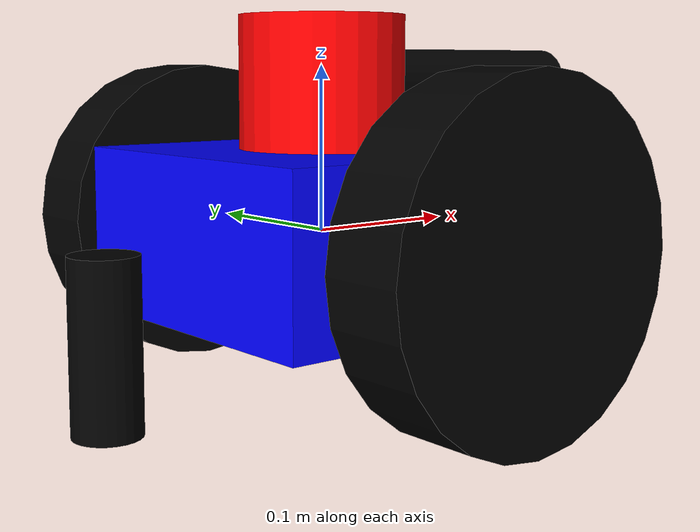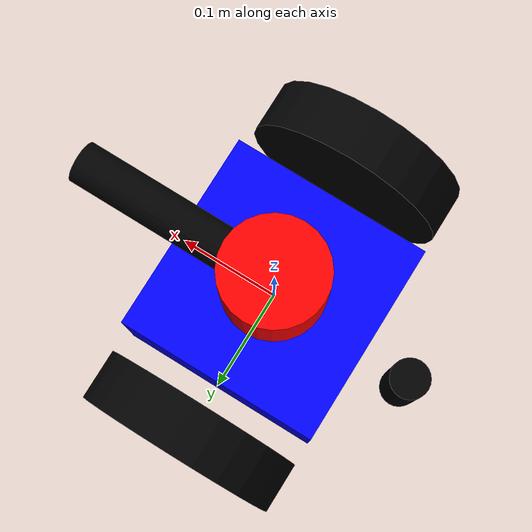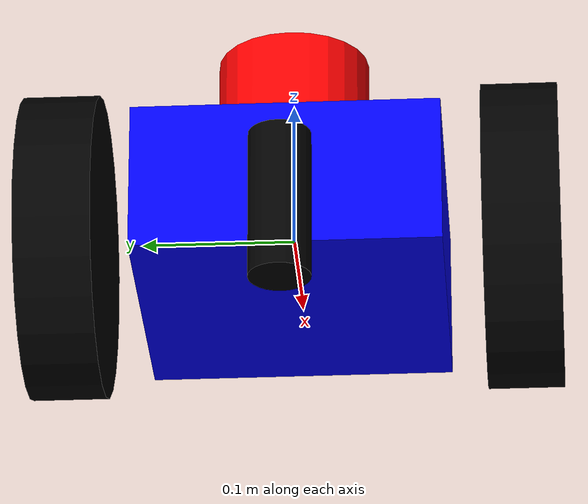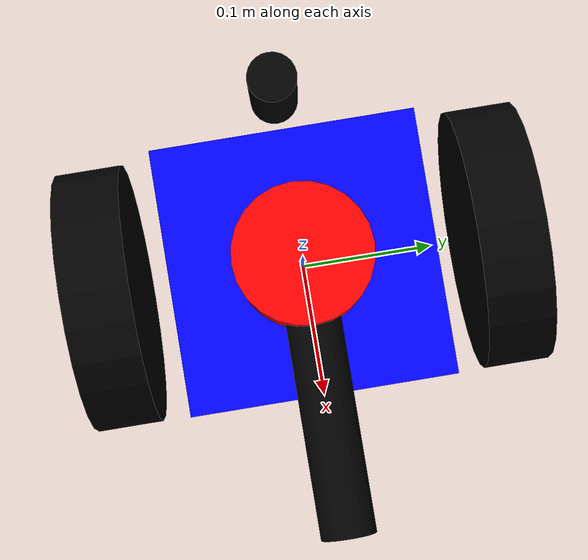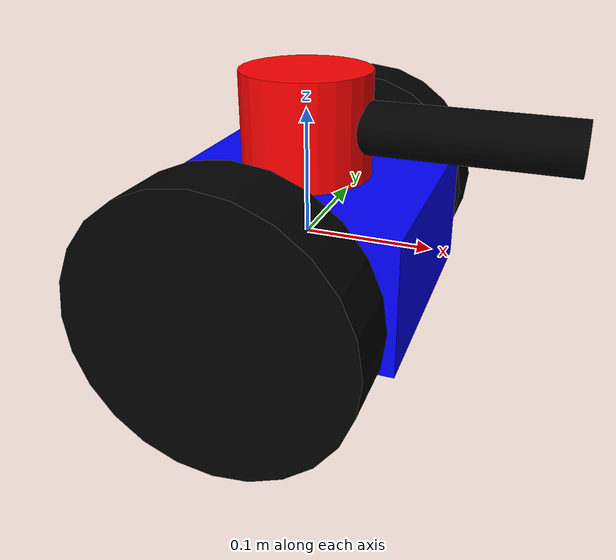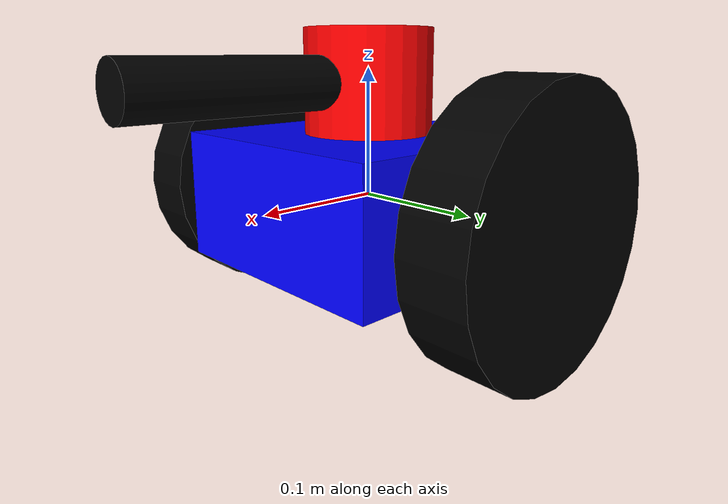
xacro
<?xml version="1.0"?>
<robot name="diffbot" xmlns:xacro="http://www.ros.org/wiki/xacro">
  <xacro:macro name="wheel" params="prefix suffix x_reflect y_reflect">
    <link name="${prefix}_${suffix}_link">
      <visual>
        <origin xyz="0 0 0" rpy="${pi/2} 0 0"/>
        <geometry><cylinder radius="0.1" length="0.05"/></geometry>
        <material name="black"><color rgba="0 0 0 1"/></material>
      </visual>
      <collision>
        <origin xyz="0 0 0" rpy="${pi/2} 0 0"/>
        <geometry><cylinder radius="0.1" length="0.05"/></geometry>
      </collision>
      <inertial>
        <mass value="1.0"/>
        <inertia ixx="0.0027" ixy="0" ixz="0" iyy="0.0027" iyz="0" izz="0.005"/>
      </inertial>
    </link>
    <joint name="${prefix}_${suffix}_joint" type="continuous">
      <parent link="base_link"/>
      <child link="${prefix}_${suffix}_link"/>
      <origin xyz="0 ${y_reflect*0.15} 0" rpy="0 0 0"/>
      <axis xyz="0 1 0"/>
      <limit effort="10.0" velocity="20.0"/>
      <dynamics damping="0.1" friction="0.1"/>
    </joint>
    <transmission name="${prefix}_${suffix}_trans">
      <type>transmission_interface/SimpleTransmission</type>
      <joint name="${prefix}_${suffix}_joint">
        <hardwareInterface>hardware_interface/VelocityJointInterface</hardwareInterface>
      </joint>
      <actuator name="${prefix}_${suffix}_motor">
        <hardwareInterface>hardware_interface/VelocityJointInterface</hardwareInterface>
        <mechanicalReduction>1</mechanicalReduction>
      </actuator>
    </transmission>
  </xacro:macro>

  <link name="base_link">
    <visual>
      <geometry><box size="0.2 0.2 0.1"/></geometry>
      <material name="blue"><color rgba="0 0 1 1"/></material>
    </visual>
    <collision><geometry><box size="0.2 0.2 0.1"/></geometry></collision>
    <inertial>
      <mass value="5.0"/>
      <inertia ixx="0.02" ixy="0" ixz="0" iyy="0.02" iyz="0" izz="0.03"/>
    </inertial>
  </link>

  <xacro:wheel prefix="wheel" suffix="0" x_reflect="0" y_reflect="1" />
  <xacro:wheel prefix="wheel" suffix="1" x_reflect="0" y_reflect="-1" />

  <link name="caster_link">
    <collision>
      <geometry><sphere radius="0.05"/></geometry>
      <surface><friction><ode><mu>0.0</mu><mu2>0.0</mu2></ode></friction></surface>
    </collision>
    <inertial><mass value="0.1"/><inertia ixx="0.0001" ixy="0" ixz="0" iyy="0.0001" iyz="0" izz="0.0001"/></inertial>
  </link>
  <joint name="caster_joint" type="fixed">
    <parent link="base_link"/>
    <child link="caster_link"/>
    <origin xyz="0.15 0 -0.05"/>
  </joint>

  <link name="turret_link">
    <visual>
      <geometry><cylinder radius="0.05" length="0.08"/></geometry>
      <material name="red"><color rgba="1 0 0 1"/></material>
    </visual>
    <collision>
      <geometry><cylinder radius="0.05" length="0.08"/></geometry>
    </collision>
    <inertial>
      <mass value="0.5"/>
      <inertia ixx="0.001" ixy="0" ixz="0" iyy="0.001" iyz="0" izz="0.001"/>
    </inertial>
  </link>

  <joint name="turret_joint" type="revolute">
    <parent link="base_link"/>
    <child link="turret_link"/>
    <origin xyz="0 0 0.09" rpy="0 0 0"/> <axis xyz="0 0 1"/>
    <limit lower="-3.14" upper="3.14" effort="10.0" velocity="5.0"/>
 <dynamics damping="0.0" friction="0.0"/>
  </joint>

  <transmission name="turret_trans">
    <type>transmission_interface/SimpleTransmission</type>
    <joint name="turret_joint">
      <hardwareInterface>hardware_interface/VelocityJointInterface</hardwareInterface>
    </joint>
    <actuator name="turret_motor">
      <hardwareInterface>hardware_interface/VelocityJointInterface</hardwareInterface>
      <mechanicalReduction>1</mechanicalReduction>
    </actuator>
  </transmission>

  <link name="gun_link">
    <visual>
      <origin xyz="0.1 0 0" rpy="0 1.57 0"/> <geometry><cylinder radius="0.02" length="0.2"/></geometry>
      <material name="black"><color rgba="0 0 0 1"/></material>
    </visual>
    <collision>
      <origin xyz="0.1 0 0" rpy="0 1.57 0"/>
      <geometry><cylinder radius="0.02" length="0.2"/></geometry>
    </collision>
    <inertial>
      <mass value="0.1"/>
      <inertia ixx="0.0001" ixy="0" ixz="0" iyy="0.0001" iyz="0" izz="0.0001"/>
    </inertial>
  </link>

  <joint name="gun_joint" type="fixed">
    <parent link="turret_link"/>
    <child link="gun_link"/>
    <origin xyz="0 0 0" rpy="0 0 0"/>
  </joint>

  <link name="tail_link">
    <visual>
      <geometry><cylinder radius="0.02" length="0.1"/></geometry>
      <material name="black"><color rgba="0 0 0 1"/></material>
    </visual>
    <collision>
      <geometry><cylinder radius="0.02" length="0.1"/></geometry>
      <surface>
        <friction>
          <ode>
            <mu>0.0</mu>
            <mu2>0.0</mu2>
          </ode>
        </friction>
      </surface>
    </collision>
    <inertial>
      <mass value="0.05"/>
      <inertia ixx="0.0001" ixy="0" ixz="0" iyy="0.0001" iyz="0" izz="0.0001"/>
    </inertial>
  </link>

  <joint name="tail_joint" type="fixed">
    <parent link="base_link"/>
    <child link="tail_link"/>
    <origin xyz="-0.15 0 -0.05" rpy="0 0 0"/>
  </joint>

  <gazebo>
    <plugin name="gazebo_ros_control" filename="libgazebo_ros_control.so">
      <robotNamespace>/</robotNamespace>
    </plugin>

    <plugin name="chassis_follower" filename="libchassis_follower_plugin.so">
    </plugin>
  </gazebo>
</robot>
